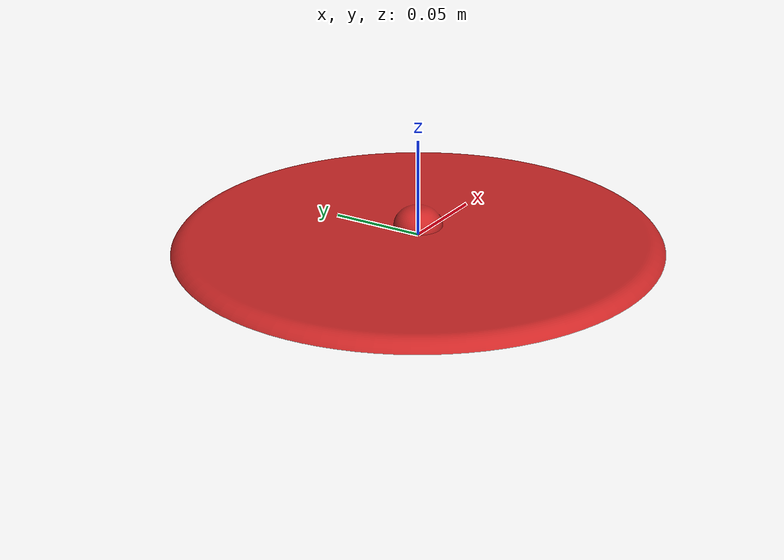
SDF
<?xml version="1.0" ?>
<sdf version="1.5">
  <model name="landmine">
    <static>true</static>
    <link name="link">
      <collision name="collision">
        <geometry>
          <mesh>
            <uri>model://landmine/meshes/landmine.stl</uri>
            <scale>0.001 0.001 0.001</scale>
          </mesh>
        </geometry>
        <surface>
          <friction>
            <ode>
              <mu>100</mu>
              <mu2>50</mu2>
            </ode>
          </friction>
        </surface>
      </collision>
      <visual name="visual">
        <geometry>
          <mesh>
            <uri>model://landmine/meshes/landmine.stl</uri>
            <scale>0.001 0.001 0.001</scale>
          </mesh>
        </geometry>
        <material>
          <script>
            <uri>file://media/materials/scripts/gazebo.material</uri>
            <name>Gazebo/Red</name>
          </script>
        </material>
      </visual>
    </link>
  </model>
</sdf>
